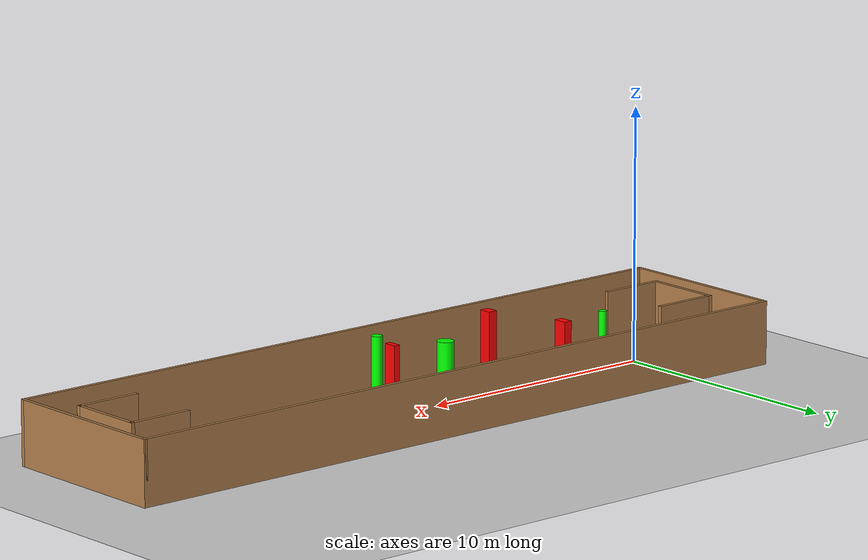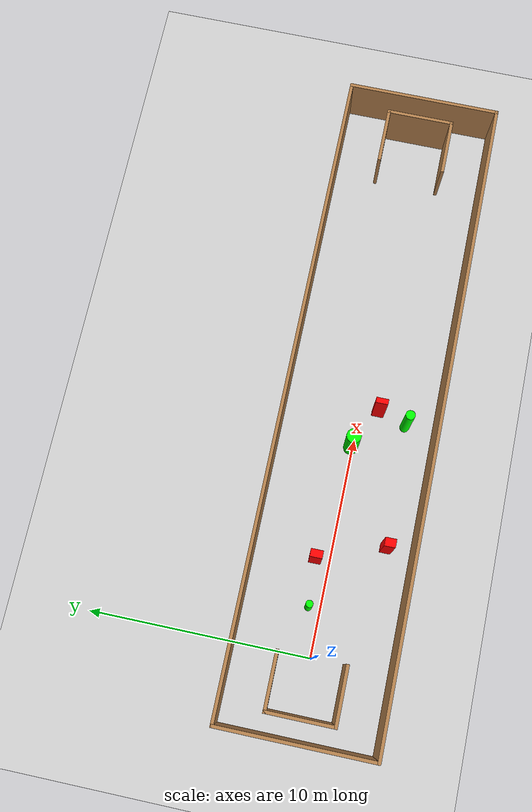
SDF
<sdf version="1.7">
 <world name="default">
  <light name="sun" type="directional">
   <pose>0 0 10 0 -0 0</pose>
   <diffuse>0.8 0.8 0.8 1</diffuse>
   <specular>0.2 0.2 0.2 1</specular>
   <attenuation>
    <range>1000</range>
    <constant>0.9</constant>
    <linear>0.01</linear>
    <quadratic>0.001</quadratic>
   </attenuation>
   <direction>-0.5 0.1 -0.9</direction>
   <spot><inner_angle>0</inner_angle><outer_angle>0</outer_angle><falloff>0</falloff></spot>
  </light>
  <model name="ground_plane">
   <static>1</static>
   <link name="link">
    <collision name="collision">
     <geometry><plane><normal>0 0 1</normal><size>100 100</size></plane></geometry>
     <surface>
      <contact><collide_bitmask>65535</collide_bitmask></contact>
      <friction><ode><mu>100</mu><mu2>50</mu2></ode></friction>
     </surface>
    </collision>
    <visual name="visual">
     <cast_shadows>0</cast_shadows>
     <geometry><plane><normal>0 0 1</normal><size>100 100</size></plane></geometry>
     <material>
      <script><uri>file://media/materials/scripts/gazebo.material</uri><name>Gazebo/Grey</name></script>
     </material>
    </visual>
   </link>
  </model>
  <gravity>0 0 -9.8</gravity>
  <magnetic_field>6e-06 2.3e-05 -4.2e-05</magnetic_field>
  <atmosphere type="adiabatic"/>
  <physics type="ode">
   <max_step_size>0.001</max_step_size>
   <real_time_factor>1</real_time_factor>
   <real_time_update_rate>1000</real_time_update_rate>
  </physics>
  <scene><ambient>0.4 0.4 0.4 1</ambient><background>0.7 0.7 0.7 1</background><shadows>1</shadows></scene>
  <spherical_coordinates>
   <surface_model>EARTH_WGS84</surface_model>
   <latitude_deg>0</latitude_deg>
   <longitude_deg>0</longitude_deg>
   <elevation>0</elevation>
   <heading_deg>0</heading_deg>
  </spherical_coordinates>
  <model name="my_base_walls">
   <link name="Wall_0">
    <collision name="Wall_0_Collision">
     <geometry><box><size>7.15 0.15 2.5</size></box></geometry>
     <pose>0 0 1.25 0 -0 0</pose>
    </collision>
    <visual name="Wall_0_Visual">
     <pose>0 0 1.25 0 -0 0</pose>
     <geometry><box><size>7.15 0.15 2.5</size></box></geometry>
     <material>
      <script><uri>file://media/materials/scripts/gazebo.material</uri><name>Gazebo/Wood</name></script>
      <ambient>1 1 1 1</ambient>
     </material>
     <meta><layer>0</layer></meta>
    </visual>
    <pose>-15 0 0 0 -0 1.5708</pose>
   </link>
   <link name="Wall_10">
    <collision name="Wall_10_Collision">
     <geometry><box><size>2.65 0.15 2.5</size></box></geometry>
     <pose>0 0 1.25 0 -0 0</pose>
    </collision>
    <visual name="Wall_10_Visual">
     <pose>0 0 1.25 0 -0 0</pose>
     <geometry><box><size>2.65 0.15 2.5</size></box></geometry>
     <material>
      <script><uri>file://media/materials/scripts/gazebo.material</uri><name>Gazebo/Wood</name></script>
      <ambient>1 1 1 1</ambient>
     </material>
     <meta><layer>0</layer></meta>
    </visual>
    <pose>-12.75 -1.5 0 0 -0 0</pose>
   </link>
   <link name="Wall_12">
    <collision name="Wall_12_Collision">
     <geometry><box><size>2.65 0.15 2.5</size></box></geometry>
     <pose>0 0 1.25 0 -0 0</pose>
    </collision>
    <visual name="Wall_12_Visual">
     <pose>0 0 1.25 0 -0 0</pose>
     <geometry><box><size>2.65 0.15 2.5</size></box></geometry>
     <material>
      <script><uri>file://media/materials/scripts/gazebo.material</uri><name>Gazebo/Wood</name></script>
      <ambient>1 1 1 1</ambient>
     </material>
     <meta><layer>0</layer></meta>
    </visual>
    <pose>-12.75 1.5 0 0 -0 0</pose>
   </link>
   <link name="Wall_14">
    <collision name="Wall_14_Collision">
     <geometry><box><size>3.15 0.15 2.5</size></box></geometry>
     <pose>0 0 1.25 0 -0 0</pose>
    </collision>
    <visual name="Wall_14_Visual">
     <pose>0 0 1.25 0 -0 0</pose>
     <geometry><box><size>3.15 0.15 2.5</size></box></geometry>
     <material>
      <script><uri>file://media/materials/scripts/gazebo.material</uri><name>Gazebo/Wood</name></script>
      <ambient>1 1 1 1</ambient>
     </material>
     <meta><layer>0</layer></meta>
    </visual>
    <pose>14 0 0 0 -0 -1.5708</pose>
   </link>
   <link name="Wall_15">
    <collision name="Wall_15_Collision">
     <geometry><box><size>2.65 0.15 2.5</size></box></geometry>
     <pose>0 0 1.25 0 -0 0</pose>
    </collision>
    <visual name="Wall_15_Visual">
     <pose>0 0 1.25 0 -0 0</pose>
     <geometry><box><size>2.65 0.15 2.5</size></box></geometry>
     <material>
      <script><uri>file://media/materials/scripts/gazebo.material</uri><name>Gazebo/Wood</name></script>
      <ambient>1 1 1 1</ambient>
     </material>
     <meta><layer>0</layer></meta>
    </visual>
    <pose>12.75 -1.5 0 0 -0 3.14159</pose>
   </link>
   <link name="Wall_17">
    <collision name="Wall_17_Collision">
     <geometry><box><size>2.65 0.15 2.5</size></box></geometry>
     <pose>0 0 1.25 0 -0 0</pose>
    </collision>
    <visual name="Wall_17_Visual">
     <pose>0 0 1.25 0 -0 0</pose>
     <geometry><box><size>2.65 0.15 2.5</size></box></geometry>
     <material>
      <script><uri>file://media/materials/scripts/gazebo.material</uri><name>Gazebo/Wood</name></script>
      <ambient>1 1 1 1</ambient>
     </material>
     <meta><layer>0</layer></meta>
    </visual>
    <pose>12.75 1.5 0 0 -0 3.14159</pose>
   </link>
   <link name="Wall_2">
    <collision name="Wall_2_Collision">
     <geometry><box><size>30.15 0.15 2.5</size></box></geometry>
     <pose>0 0 1.25 0 -0 0</pose>
    </collision>
    <visual name="Wall_2_Visual">
     <pose>0 0 1.25 0 -0 0</pose>
     <geometry><box><size>30.15 0.15 2.5</size></box></geometry>
     <material>
      <script><uri>file://media/materials/scripts/gazebo.material</uri><name>Gazebo/Wood</name></script>
      <ambient>1 1 1 1</ambient>
     </material>
     <meta><layer>0</layer></meta>
    </visual>
    <pose>-0 -3.5 0 0 -0 0</pose>
   </link>
   <link name="Wall_4">
    <collision name="Wall_4_Collision">
     <geometry><box><size>30.15 0.15 2.5</size></box></geometry>
     <pose>0 0 1.25 0 -0 0</pose>
    </collision>
    <visual name="Wall_4_Visual">
     <pose>0 0 1.25 0 -0 0</pose>
     <geometry><box><size>30.15 0.15 2.5</size></box></geometry>
     <material>
      <script><uri>file://media/materials/scripts/gazebo.material</uri><name>Gazebo/Wood</name></script>
      <ambient>1 1 1 1</ambient>
     </material>
     <meta><layer>0</layer></meta>
    </visual>
    <pose>-0 3.5 0 0 -0 0</pose>
   </link>
   <link name="Wall_6">
    <collision name="Wall_6_Collision">
     <geometry><box><size>7.15 0.15 2.5</size></box></geometry>
     <pose>0 0 1.25 0 -0 0</pose>
    </collision>
    <visual name="Wall_6_Visual">
     <pose>0 0 1.25 0 -0 0</pose>
     <geometry><box><size>7.15 0.15 2.5</size></box></geometry>
     <material>
      <script><uri>file://media/materials/scripts/gazebo.material</uri><name>Gazebo/Wood</name></script>
      <ambient>1 1 1 1</ambient>
     </material>
     <meta><layer>0</layer></meta>
    </visual>
    <pose>15 0 0 0 -0 -1.5708</pose>
   </link>
   <link name="Wall_9">
    <collision name="Wall_9_Collision">
     <geometry><box><size>3.15 0.15 2.5</size></box></geometry>
     <pose>0 0 1.25 0 -0 0</pose>
    </collision>
    <visual name="Wall_9_Visual">
     <pose>0 0 1.25 0 -0 0</pose>
     <geometry><box><size>3.15 0.15 2.5</size></box></geometry>
     <material>
      <script><uri>file://media/materials/scripts/gazebo.material</uri><name>Gazebo/Wood</name></script>
      <ambient>1 1 1 1</ambient>
     </material>
     <meta><layer>0</layer></meta>
    </visual>
    <pose>-14 0 0 0 -0 -1.5708</pose>
   </link>
   <static>1</static>
   <pose>11.5 0 0 0 -0 0</pose>
  </model>
  <model name="cylinder1">
   <static>1</static>
   <link name="link">
    <inertial>
     <mass>1</mass>
     <inertia><ixx>0.5</ixx><ixy>0</ixy><ixz>0</ixz><iyy>0.5</iyy><iyz>0</iyz><izz>1</izz></inertia>
    </inertial>
    <collision name="collision">
     <geometry><cylinder><radius>0.16088796983379497</radius><length>2.5</length></cylinder></geometry>
    </collision>
    <visual name="visual">
     <geometry><cylinder><radius>0.16088796983379497</radius><length>2.5</length></cylinder></geometry>
     <material>
      <ambient>0 1 0 1</ambient>
      <diffuse>0 1 0 1</diffuse>
      <specular>0.1 0.1 0.1 1</specular>
      <emissive>0 0 0 0</emissive>
     </material>
    </visual>
   </link>
   <pose>2.165472694683812 0.564968009805531 1.25 0 0 0</pose>
  </model>
  <model name="cylinder2">
   <static>1</static>
   <link name="link">
    <inertial>
     <mass>1</mass>
     <inertia><ixx>0.5</ixx><ixy>0</ixy><ixz>0</ixz><iyy>0.5</iyy><iyz>0</iyz><izz>1</izz></inertia>
    </inertial>
    <collision name="collision">
     <geometry><cylinder><radius>0.3306422766873409</radius><length>2.5</length></cylinder></geometry>
    </collision>
    <visual name="visual">
     <geometry><cylinder><radius>0.3306422766873409</radius><length>2.5</length></cylinder></geometry>
     <material>
      <ambient>0 1 0 1</ambient>
      <diffuse>0 1 0 1</diffuse>
      <specular>0.1 0.1 0.1 1</specular>
      <emissive>0 0 0 0</emissive>
     </material>
    </visual>
   </link>
   <pose>9.663296853044828 0.1128407575929562 1.25 0 0 0</pose>
  </model>
  <model name="cylinder3">
   <static>1</static>
   <link name="link">
    <inertial>
     <mass>1</mass>
     <inertia><ixx>0.5</ixx><ixy>0</ixy><ixz>0</ixz><iyy>0.5</iyy><iyz>0</iyz><izz>1</izz></inertia>
    </inertial>
    <collision name="collision">
     <geometry><cylinder><radius>0.21632665958333253</radius><length>2.5</length></cylinder></geometry>
    </collision>
    <visual name="visual">
     <geometry><cylinder><radius>0.21632665958333253</radius><length>2.5</length></cylinder></geometry>
     <material>
      <ambient>0 1 0 1</ambient>
      <diffuse>0 1 0 1</diffuse>
      <specular>0.1 0.1 0.1 1</specular>
      <emissive>0 0 0 0</emissive>
     </material>
    </visual>
   </link>
   <pose>11.099792651770114 -2.1423622334296457 1.25 0 0 0</pose>
  </model>
  <model name="box1">
   <static>1</static>
   <link name="link">
    <inertial>
     <mass>1</mass>
     <inertia><ixx>0.083</ixx><ixy>0</ixy><ixz>0</ixz><iyy>0.083</iyy><iyz>0</iyz><izz>0.083</izz></inertia>
    </inertial>
    <collision name="collision">
     <geometry><box><size>0.3837522732120579 0.4941979935485653 2.5</size></box></geometry>
    </collision>
    <visual name="visual">
     <geometry><box><size>0.3837522732120579 0.4941979935485653 2.5</size></box></geometry>
     <material>
      <ambient>1 0 0 1</ambient>
      <diffuse>1 0 0 1</diffuse>
      <specular>0.1 0.1 0.1 1</specular>
      <emissive>0 0 0 0</emissive>
     </material>
    </visual>
    <sensor name="my_contact" type="contact">
     <contact><collision>box_collision</collision><topic>__default_topic__</topic></contact>
    </sensor>
   </link>
   <pose>5.410477832177353 -2.306537770079738 1.25 0 0 0</pose>
  </model>
  <model name="box2">
   <static>1</static>
   <link name="link">
    <inertial>
     <mass>1</mass>
     <inertia><ixx>0.083</ixx><ixy>0</ixy><ixz>0</ixz><iyy>0.083</iyy><iyz>0</iyz><izz>0.083</izz></inertia>
    </inertial>
    <collision name="collision">
     <geometry><box><size>0.3499994746776599 0.5498071864108547 2.5</size></box></geometry>
    </collision>
    <visual name="visual">
     <geometry><box><size>0.3499994746776599 0.5498071864108547 2.5</size></box></geometry>
     <material>
      <ambient>1 0 0 1</ambient>
      <diffuse>1 0 0 1</diffuse>
      <specular>0.1 0.1 0.1 1</specular>
      <emissive>0 0 0 0</emissive>
     </material>
    </visual>
    <sensor name="my_contact" type="contact">
     <contact><collision>box_collision</collision><topic>__default_topic__</topic></contact>
    </sensor>
   </link>
   <pose>4.29455090604122 0.6892370543126827 1.25 0 0 0</pose>
  </model>
  <model name="box3">
   <static>1</static>
   <link name="link">
    <inertial>
     <mass>1</mass>
     <inertia><ixx>0.083</ixx><ixy>0</ixy><ixz>0</ixz><iyy>0.083</iyy><iyz>0</iyz><izz>0.083</izz></inertia>
    </inertial>
    <collision name="collision">
     <geometry><box><size>0.2472870841788143 0.5565736479212275 2.5</size></box></geometry>
    </collision>
    <visual name="visual">
     <geometry><box><size>0.2472870841788143 0.5565736479212275 2.5</size></box></geometry>
     <material>
      <ambient>1 0 0 1</ambient>
      <diffuse>1 0 0 1</diffuse>
      <specular>0.1 0.1 0.1 1</specular>
      <emissive>0 0 0 0</emissive>
     </material>
    </visual>
    <sensor name="my_contact" type="contact">
     <contact><collision>box_collision</collision><topic>__default_topic__</topic></contact>
    </sensor>
   </link>
   <pose>11.475583592835738 -0.8094943734163422 1.25 0 0 0</pose>
  </model>
 </world>
</sdf>
